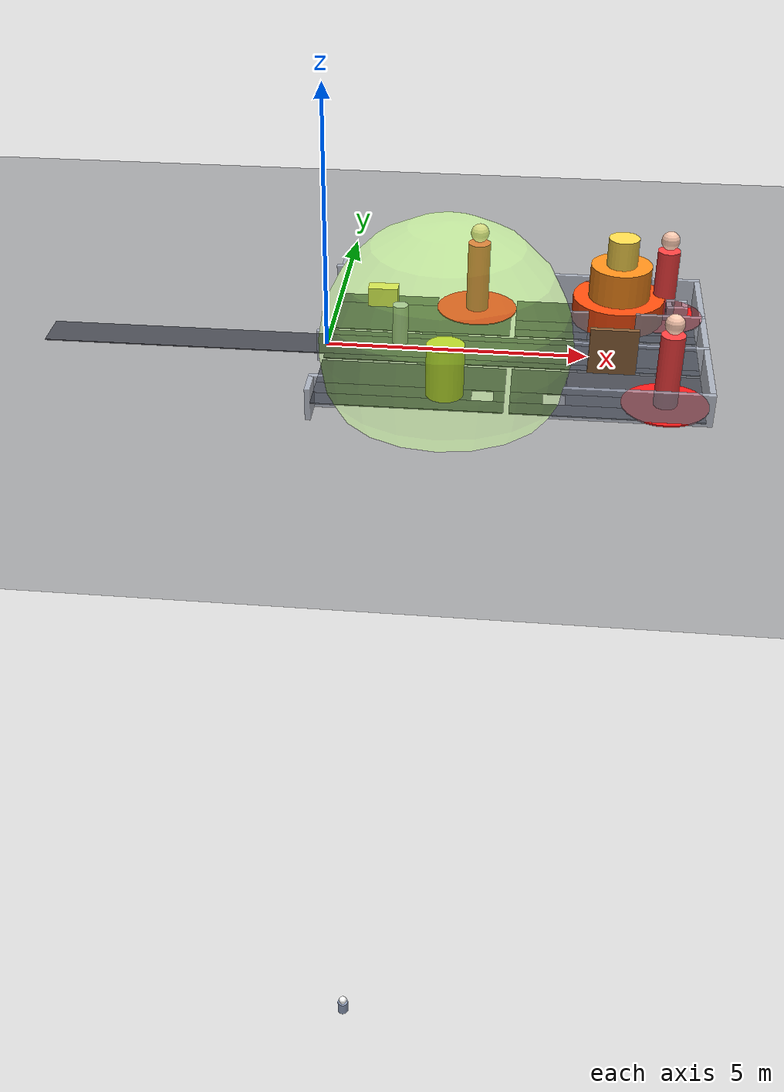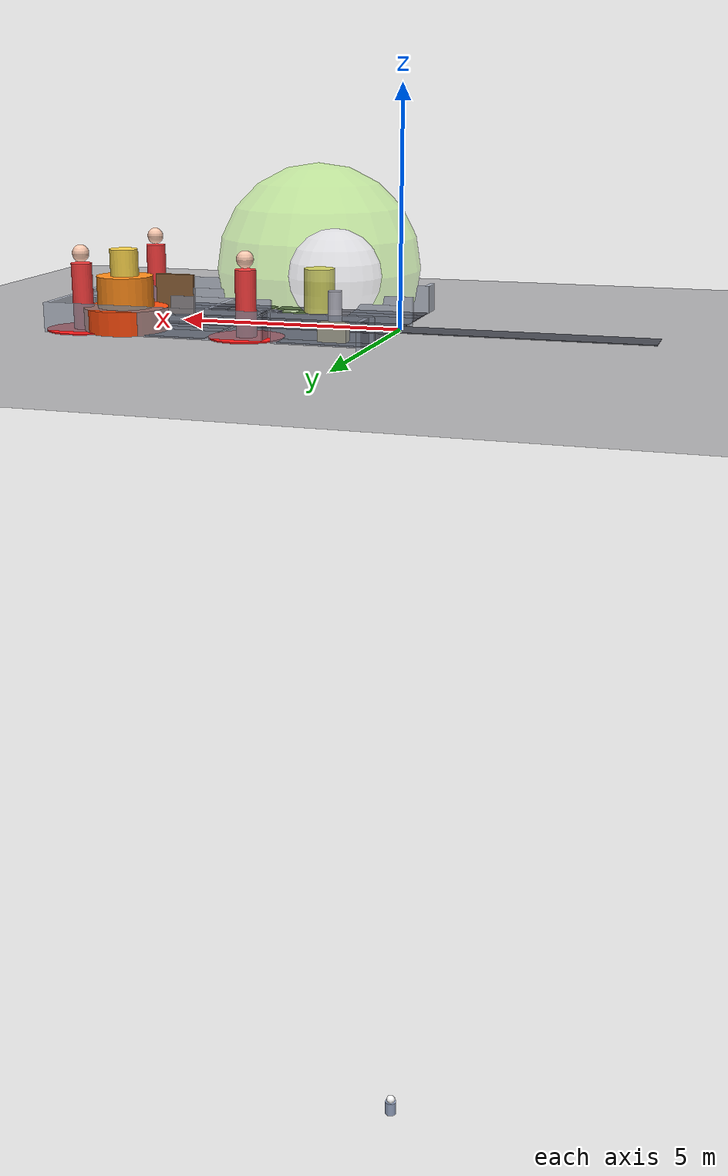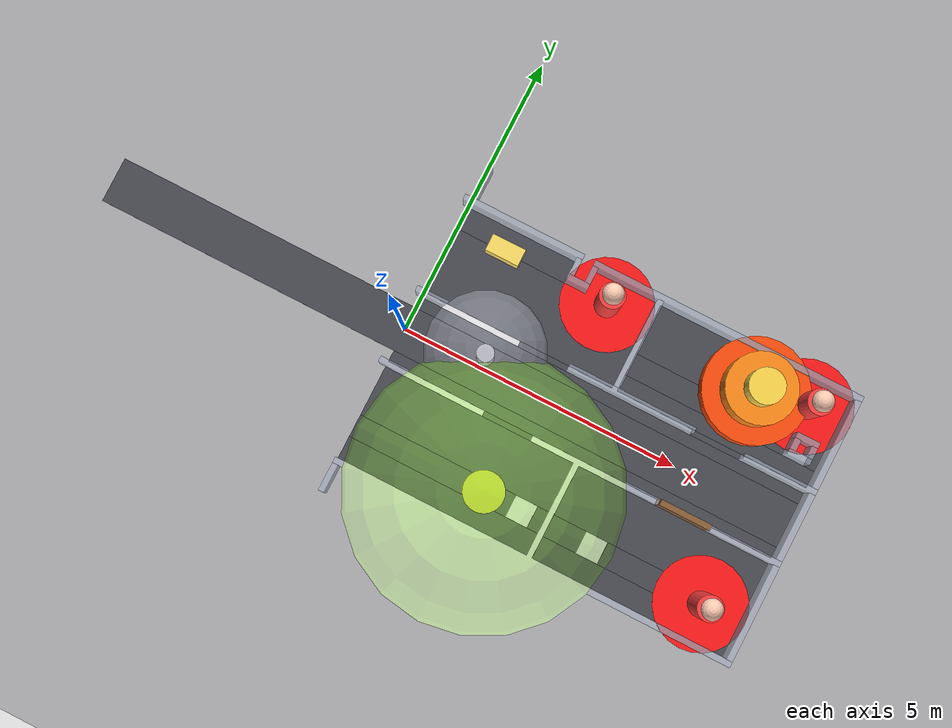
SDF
<sdf version="1.9">
 <world name="living_map_fire">
  <model name="ground">
   <static>true</static>
   <link name="l">
    <collision name="c"><geometry><plane><normal>0 0 1</normal><size>120 80</size></plane></geometry></collision>
    <visual name="v">
     <geometry><plane><normal>0 0 1</normal><size>120 80</size></plane></geometry>
     <material><ambient>0.16 0.17 0.2 1.0</ambient><diffuse>0.16 0.17 0.2 1.0</diffuse></material>
    </visual>
   </link>
  </model>
  <model name="slab0_2">
   <static>true</static>
   <pose>1.750 -2.200 0.010 0 0 0</pose>
   <link name="l">
    <collision name="c"><geometry><box><size>3.500 0.400 0.020</size></box></geometry></collision>
    <visual name="v">
     <geometry><box><size>3.500 0.400 0.020</size></box></geometry>
     <material><ambient>0.28 0.29 0.32 1.0</ambient><diffuse>0.28 0.29 0.32 1.0</diffuse></material>
    </visual>
   </link>
  </model>
  <model name="slab0_3">
   <static>true</static>
   <pose>5.350 -2.200 0.010 0 0 0</pose>
   <link name="l">
    <collision name="c"><geometry><box><size>3.500 0.400 0.020</size></box></geometry></collision>
    <visual name="v">
     <geometry><box><size>3.500 0.400 0.020</size></box></geometry>
     <material><ambient>0.28 0.29 0.32 1.0</ambient><diffuse>0.28 0.29 0.32 1.0</diffuse></material>
    </visual>
   </link>
  </model>
  <model name="slab0_4">
   <static>true</static>
   <pose>1.450 -1.800 0.010 0 0 0</pose>
   <link name="l">
    <collision name="c"><geometry><box><size>2.900 0.400 0.020</size></box></geometry></collision>
    <visual name="v">
     <geometry><box><size>2.900 0.400 0.020</size></box></geometry>
     <material><ambient>0.28 0.29 0.32 1.0</ambient><diffuse>0.28 0.29 0.32 1.0</diffuse></material>
    </visual>
   </link>
  </model>
  <model name="slab0_5">
   <static>true</static>
   <pose>3.400 -1.800 0.010 0 0 0</pose>
   <link name="l">
    <collision name="c"><geometry><box><size>0.200 0.400 0.020</size></box></geometry></collision>
    <visual name="v">
     <geometry><box><size>0.200 0.400 0.020</size></box></geometry>
     <material><ambient>0.28 0.29 0.32 1.0</ambient><diffuse>0.28 0.29 0.32 1.0</diffuse></material>
    </visual>
   </link>
  </model>
  <model name="slab0_6">
   <static>true</static>
   <pose>3.900 -1.800 0.010 0 0 0</pose>
   <link name="l">
    <collision name="c"><geometry><box><size>0.600 0.400 0.020</size></box></geometry></collision>
    <visual name="v">
     <geometry><box><size>0.600 0.400 0.020</size></box></geometry>
     <material><ambient>0.28 0.29 0.32 1.0</ambient><diffuse>0.28 0.29 0.32 1.0</diffuse></material>
    </visual>
   </link>
  </model>
  <model name="slab0_7">
   <static>true</static>
   <pose>5.850 -1.800 0.010 0 0 0</pose>
   <link name="l">
    <collision name="c"><geometry><box><size>2.500 0.400 0.020</size></box></geometry></collision>
    <visual name="v">
     <geometry><box><size>2.500 0.400 0.020</size></box></geometry>
     <material><ambient>0.28 0.29 0.32 1.0</ambient><diffuse>0.28 0.29 0.32 1.0</diffuse></material>
    </visual>
   </link>
  </model>
  <model name="slab0_8">
   <static>true</static>
   <pose>1.750 -1.150 0.010 0 0 0</pose>
   <link name="l">
    <collision name="c"><geometry><box><size>3.500 0.900 0.020</size></box></geometry></collision>
    <visual name="v">
     <geometry><box><size>3.500 0.900 0.020</size></box></geometry>
     <material><ambient>0.28 0.29 0.32 1.0</ambient><diffuse>0.28 0.29 0.32 1.0</diffuse></material>
    </visual>
   </link>
  </model>
  <model name="slab0_9">
   <static>true</static>
   <pose>5.350 -1.150 0.010 0 0 0</pose>
   <link name="l">
    <collision name="c"><geometry><box><size>3.500 0.900 0.020</size></box></geometry></collision>
    <visual name="v">
     <geometry><box><size>3.500 0.900 0.020</size></box></geometry>
     <material><ambient>0.28 0.29 0.32 1.0</ambient><diffuse>0.28 0.29 0.32 1.0</diffuse></material>
    </visual>
   </link>
  </model>
  <model name="slab0_10">
   <static>true</static>
   <pose>2.250 -0.650 0.010 0 0 0</pose>
   <link name="l">
    <collision name="c"><geometry><box><size>0.900 0.100 0.020</size></box></geometry></collision>
    <visual name="v">
     <geometry><box><size>0.900 0.100 0.020</size></box></geometry>
     <material><ambient>0.28 0.29 0.32 1.0</ambient><diffuse>0.28 0.29 0.32 1.0</diffuse></material>
    </visual>
   </link>
  </model>
  <model name="slab0_11">
   <static>true</static>
   <pose>5.450 -0.650 0.010 0 0 0</pose>
   <link name="l">
    <collision name="c"><geometry><box><size>0.900 0.100 0.020</size></box></geometry></collision>
    <visual name="v">
     <geometry><box><size>0.900 0.100 0.020</size></box></geometry>
     <material><ambient>0.28 0.29 0.32 1.0</ambient><diffuse>0.28 0.29 0.32 1.0</diffuse></material>
    </visual>
   </link>
  </model>
  <model name="slab0_12">
   <static>true</static>
   <pose>3.550 -0.500 0.010 0 0 0</pose>
   <link name="l">
    <collision name="c"><geometry><box><size>7.100 0.200 0.020</size></box></geometry></collision>
    <visual name="v">
     <geometry><box><size>7.100 0.200 0.020</size></box></geometry>
     <material><ambient>0.28 0.29 0.32 1.0</ambient><diffuse>0.28 0.29 0.32 1.0</diffuse></material>
    </visual>
   </link>
  </model>
  <model name="slab0_13">
   <static>true</static>
   <pose>0.800 0.000 0.010 0 0 0</pose>
   <link name="l">
    <collision name="c"><geometry><box><size>12.600 0.800 0.020</size></box></geometry></collision>
    <visual name="v">
     <geometry><box><size>12.600 0.800 0.020</size></box></geometry>
     <material><ambient>0.28 0.29 0.32 1.0</ambient><diffuse>0.28 0.29 0.32 1.0</diffuse></material>
    </visual>
   </link>
  </model>
  <model name="slab0_15">
   <static>true</static>
   <pose>3.550 0.500 0.010 0 0 0</pose>
   <link name="l">
    <collision name="c"><geometry><box><size>7.100 0.200 0.020</size></box></geometry></collision>
    <visual name="v">
     <geometry><box><size>7.100 0.200 0.020</size></box></geometry>
     <material><ambient>0.28 0.29 0.32 1.0</ambient><diffuse>0.28 0.29 0.32 1.0</diffuse></material>
    </visual>
   </link>
  </model>
  <model name="slab0_16">
   <static>true</static>
   <pose>2.250 0.650 0.010 0 0 0</pose>
   <link name="l">
    <collision name="c"><geometry><box><size>0.900 0.100 0.020</size></box></geometry></collision>
    <visual name="v">
     <geometry><box><size>0.900 0.100 0.020</size></box></geometry>
     <material><ambient>0.28 0.29 0.32 1.0</ambient><diffuse>0.28 0.29 0.32 1.0</diffuse></material>
    </visual>
   </link>
  </model>
  <model name="slab0_17">
   <static>true</static>
   <pose>5.450 0.650 0.010 0 0 0</pose>
   <link name="l">
    <collision name="c"><geometry><box><size>0.900 0.100 0.020</size></box></geometry></collision>
    <visual name="v">
     <geometry><box><size>0.900 0.100 0.020</size></box></geometry>
     <material><ambient>0.28 0.29 0.32 1.0</ambient><diffuse>0.28 0.29 0.32 1.0</diffuse></material>
    </visual>
   </link>
  </model>
  <model name="slab0_18">
   <static>true</static>
   <pose>1.750 1.300 0.010 0 0 0</pose>
   <link name="l">
    <collision name="c"><geometry><box><size>3.500 1.200 0.020</size></box></geometry></collision>
    <visual name="v">
     <geometry><box><size>3.500 1.200 0.020</size></box></geometry>
     <material><ambient>0.28 0.29 0.32 1.0</ambient><diffuse>0.28 0.29 0.32 1.0</diffuse></material>
    </visual>
   </link>
  </model>
  <model name="slab0_19">
   <static>true</static>
   <pose>5.350 0.850 0.010 0 0 0</pose>
   <link name="l">
    <collision name="c"><geometry><box><size>3.500 0.300 0.020</size></box></geometry></collision>
    <visual name="v">
     <geometry><box><size>3.500 0.300 0.020</size></box></geometry>
     <material><ambient>0.28 0.29 0.32 1.0</ambient><diffuse>0.28 0.29 0.32 1.0</diffuse></material>
    </visual>
   </link>
  </model>
  <model name="slab0_20">
   <static>true</static>
   <pose>5.050 1.200 0.010 0 0 0</pose>
   <link name="l">
    <collision name="c"><geometry><box><size>2.900 0.400 0.020</size></box></geometry></collision>
    <visual name="v">
     <geometry><box><size>2.900 0.400 0.020</size></box></geometry>
     <material><ambient>0.28 0.29 0.32 1.0</ambient><diffuse>0.28 0.29 0.32 1.0</diffuse></material>
    </visual>
   </link>
  </model>
  <model name="slab0_21">
   <static>true</static>
   <pose>7.000 1.200 0.010 0 0 0</pose>
   <link name="l">
    <collision name="c"><geometry><box><size>0.200 0.400 0.020</size></box></geometry></collision>
    <visual name="v">
     <geometry><box><size>0.200 0.400 0.020</size></box></geometry>
     <material><ambient>0.28 0.29 0.32 1.0</ambient><diffuse>0.28 0.29 0.32 1.0</diffuse></material>
    </visual>
   </link>
  </model>
  <model name="slab0_22">
   <static>true</static>
   <pose>5.350 1.850 0.010 0 0 0</pose>
   <link name="l">
    <collision name="c"><geometry><box><size>3.500 0.900 0.020</size></box></geometry></collision>
    <visual name="v">
     <geometry><box><size>3.500 0.900 0.020</size></box></geometry>
     <material><ambient>0.28 0.29 0.32 1.0</ambient><diffuse>0.28 0.29 0.32 1.0</diffuse></material>
    </visual>
   </link>
  </model>
  <model name="slab0_23">
   <static>true</static>
   <pose>1.000 2.100 0.010 0 0 0</pose>
   <link name="l">
    <collision name="c"><geometry><box><size>2.000 0.400 0.020</size></box></geometry></collision>
    <visual name="v">
     <geometry><box><size>2.000 0.400 0.020</size></box></geometry>
     <material><ambient>0.28 0.29 0.32 1.0</ambient><diffuse>0.28 0.29 0.32 1.0</diffuse></material>
    </visual>
   </link>
  </model>
  <model name="slab0_24">
   <static>true</static>
   <pose>2.950 2.100 0.010 0 0 0</pose>
   <link name="l">
    <collision name="c"><geometry><box><size>1.100 0.400 0.020</size></box></geometry></collision>
    <visual name="v">
     <geometry><box><size>1.100 0.400 0.020</size></box></geometry>
     <material><ambient>0.28 0.29 0.32 1.0</ambient><diffuse>0.28 0.29 0.32 1.0</diffuse></material>
    </visual>
   </link>
  </model>
  <model name="wall0_2">
   <static>true</static>
   <pose>0.050 -2.750 0.305 0 0 0</pose>
   <link name="l">
    <collision name="c"><geometry><box><size>0.100 0.500 0.610</size></box></geometry></collision>
    <visual name="v">
     <geometry><box><size>0.100 0.500 0.610</size></box></geometry>
     <material><ambient>0.62 0.65 0.72 0.75</ambient><diffuse>0.62 0.65 0.72 0.75</diffuse></material>
    </visual>
   </link>
  </model>
  <model name="wall0_3">
   <static>true</static>
   <pose>3.600 -2.450 0.305 0 0 0</pose>
   <link name="l">
    <collision name="c"><geometry><box><size>7.200 0.100 0.610</size></box></geometry></collision>
    <visual name="v">
     <geometry><box><size>7.200 0.100 0.610</size></box></geometry>
     <material><ambient>0.62 0.65 0.72 0.75</ambient><diffuse>0.62 0.65 0.72 0.75</diffuse></material>
    </visual>
   </link>
  </model>
  <model name="wall0_5">
   <static>true</static>
   <pose>3.550 -1.550 0.305 0 0 0</pose>
   <link name="l">
    <collision name="c"><geometry><box><size>0.100 1.700 0.610</size></box></geometry></collision>
    <visual name="v">
     <geometry><box><size>0.100 1.700 0.610</size></box></geometry>
     <material><ambient>0.62 0.65 0.72 0.75</ambient><diffuse>0.62 0.65 0.72 0.75</diffuse></material>
    </visual>
   </link>
  </model>
  <model name="wall0_6">
   <static>true</static>
   <pose>7.150 -1.550 0.305 0 0 0</pose>
   <link name="l">
    <collision name="c"><geometry><box><size>0.100 1.700 0.610</size></box></geometry></collision>
    <visual name="v">
     <geometry><box><size>0.100 1.700 0.610</size></box></geometry>
     <material><ambient>0.62 0.65 0.72 0.75</ambient><diffuse>0.62 0.65 0.72 0.75</diffuse></material>
    </visual>
   </link>
  </model>
  <model name="wall0_7">
   <static>true</static>
   <pose>3.100 -1.950 0.305 0 0 0</pose>
   <link name="l">
    <collision name="c"><geometry><box><size>0.400 0.100 0.610</size></box></geometry></collision>
    <visual name="v">
     <geometry><box><size>0.400 0.100 0.610</size></box></geometry>
     <material><ambient>0.62 0.65 0.72 0.75</ambient><diffuse>0.62 0.65 0.72 0.75</diffuse></material>
    </visual>
   </link>
  </model>
  <model name="wall0_8">
   <static>true</static>
   <pose>4.400 -1.950 0.305 0 0 0</pose>
   <link name="l">
    <collision name="c"><geometry><box><size>0.400 0.100 0.610</size></box></geometry></collision>
    <visual name="v">
     <geometry><box><size>0.400 0.100 0.610</size></box></geometry>
     <material><ambient>0.62 0.65 0.72 0.75</ambient><diffuse>0.62 0.65 0.72 0.75</diffuse></material>
    </visual>
   </link>
  </model>
  <model name="wall0_9">
   <static>true</static>
   <pose>2.950 -1.800 0.305 0 0 0</pose>
   <link name="l">
    <collision name="c"><geometry><box><size>0.100 0.200 0.610</size></box></geometry></collision>
    <visual name="v">
     <geometry><box><size>0.100 0.200 0.610</size></box></geometry>
     <material><ambient>0.62 0.65 0.72 0.75</ambient><diffuse>0.62 0.65 0.72 0.75</diffuse></material>
    </visual>
   </link>
  </model>
  <model name="wall0_10">
   <static>true</static>
   <pose>3.250 -1.800 0.305 0 0 0</pose>
   <link name="l">
    <collision name="c"><geometry><box><size>0.100 0.200 0.610</size></box></geometry></collision>
    <visual name="v">
     <geometry><box><size>0.100 0.200 0.610</size></box></geometry>
     <material><ambient>0.62 0.65 0.72 0.75</ambient><diffuse>0.62 0.65 0.72 0.75</diffuse></material>
    </visual>
   </link>
  </model>
  <model name="wall0_11">
   <static>true</static>
   <pose>4.250 -1.800 0.305 0 0 0</pose>
   <link name="l">
    <collision name="c"><geometry><box><size>0.100 0.200 0.610</size></box></geometry></collision>
    <visual name="v">
     <geometry><box><size>0.100 0.200 0.610</size></box></geometry>
     <material><ambient>0.62 0.65 0.72 0.75</ambient><diffuse>0.62 0.65 0.72 0.75</diffuse></material>
    </visual>
   </link>
  </model>
  <model name="wall0_12">
   <static>true</static>
   <pose>4.550 -1.800 0.305 0 0 0</pose>
   <link name="l">
    <collision name="c"><geometry><box><size>0.100 0.200 0.610</size></box></geometry></collision>
    <visual name="v">
     <geometry><box><size>0.100 0.200 0.610</size></box></geometry>
     <material><ambient>0.62 0.65 0.72 0.75</ambient><diffuse>0.62 0.65 0.72 0.75</diffuse></material>
    </visual>
   </link>
  </model>
  <model name="wall0_13">
   <static>true</static>
   <pose>3.100 -1.650 0.305 0 0 0</pose>
   <link name="l">
    <collision name="c"><geometry><box><size>0.400 0.100 0.610</size></box></geometry></collision>
    <visual name="v">
     <geometry><box><size>0.400 0.100 0.610</size></box></geometry>
     <material><ambient>0.62 0.65 0.72 0.75</ambient><diffuse>0.62 0.65 0.72 0.75</diffuse></material>
    </visual>
   </link>
  </model>
  <model name="wall0_14">
   <static>true</static>
   <pose>4.400 -1.650 0.305 0 0 0</pose>
   <link name="l">
    <collision name="c"><geometry><box><size>0.400 0.100 0.610</size></box></geometry></collision>
    <visual name="v">
     <geometry><box><size>0.400 0.100 0.610</size></box></geometry>
     <material><ambient>0.62 0.65 0.72 0.75</ambient><diffuse>0.62 0.65 0.72 0.75</diffuse></material>
    </visual>
   </link>
  </model>
  <model name="wall0_15">
   <static>true</static>
   <pose>0.850 -0.650 0.305 0 0 0</pose>
   <link name="l">
    <collision name="c"><geometry><box><size>1.900 0.100 0.610</size></box></geometry></collision>
    <visual name="v">
     <geometry><box><size>1.900 0.100 0.610</size></box></geometry>
     <material><ambient>0.62 0.65 0.72 0.75</ambient><diffuse>0.62 0.65 0.72 0.75</diffuse></material>
    </visual>
   </link>
  </model>
  <model name="wall0_16">
   <static>true</static>
   <pose>3.850 -0.650 0.305 0 0 0</pose>
   <link name="l">
    <collision name="c"><geometry><box><size>2.300 0.100 0.610</size></box></geometry></collision>
    <visual name="v">
     <geometry><box><size>2.300 0.100 0.610</size></box></geometry>
     <material><ambient>0.62 0.65 0.72 0.75</ambient><diffuse>0.62 0.65 0.72 0.75</diffuse></material>
    </visual>
   </link>
  </model>
  <model name="wall0_17">
   <static>true</static>
   <pose>6.550 -0.650 0.305 0 0 0</pose>
   <link name="l">
    <collision name="c"><geometry><box><size>1.300 0.100 0.610</size></box></geometry></collision>
    <visual name="v">
     <geometry><box><size>1.300 0.100 0.610</size></box></geometry>
     <material><ambient>0.62 0.65 0.72 0.75</ambient><diffuse>0.62 0.65 0.72 0.75</diffuse></material>
    </visual>
   </link>
  </model>
  <model name="wall0_19">
   <static>true</static>
   <pose>7.150 0.000 0.305 0 0 0</pose>
   <link name="l">
    <collision name="c"><geometry><box><size>0.100 1.200 0.610</size></box></geometry></collision>
    <visual name="v">
     <geometry><box><size>0.100 1.200 0.610</size></box></geometry>
     <material><ambient>0.62 0.65 0.72 0.75</ambient><diffuse>0.62 0.65 0.72 0.75</diffuse></material>
    </visual>
   </link>
  </model>
  <model name="wall0_21">
   <static>true</static>
   <pose>0.850 0.650 0.305 0 0 0</pose>
   <link name="l">
    <collision name="c"><geometry><box><size>1.900 0.100 0.610</size></box></geometry></collision>
    <visual name="v">
     <geometry><box><size>1.900 0.100 0.610</size></box></geometry>
     <material><ambient>0.62 0.65 0.72 0.75</ambient><diffuse>0.62 0.65 0.72 0.75</diffuse></material>
    </visual>
   </link>
  </model>
  <model name="wall0_22">
   <static>true</static>
   <pose>3.850 0.650 0.305 0 0 0</pose>
   <link name="l">
    <collision name="c"><geometry><box><size>2.300 0.100 0.610</size></box></geometry></collision>
    <visual name="v">
     <geometry><box><size>2.300 0.100 0.610</size></box></geometry>
     <material><ambient>0.62 0.65 0.72 0.75</ambient><diffuse>0.62 0.65 0.72 0.75</diffuse></material>
    </visual>
   </link>
  </model>
  <model name="wall0_23">
   <static>true</static>
   <pose>6.550 0.650 0.305 0 0 0</pose>
   <link name="l">
    <collision name="c"><geometry><box><size>1.300 0.100 0.610</size></box></geometry></collision>
    <visual name="v">
     <geometry><box><size>1.300 0.100 0.610</size></box></geometry>
     <material><ambient>0.62 0.65 0.72 0.75</ambient><diffuse>0.62 0.65 0.72 0.75</diffuse></material>
    </visual>
   </link>
  </model>
  <model name="wall0_25">
   <static>true</static>
   <pose>3.550 1.500 0.305 0 0 0</pose>
   <link name="l">
    <collision name="c"><geometry><box><size>0.100 1.600 0.610</size></box></geometry></collision>
    <visual name="v">
     <geometry><box><size>0.100 1.600 0.610</size></box></geometry>
     <material><ambient>0.62 0.65 0.72 0.75</ambient><diffuse>0.62 0.65 0.72 0.75</diffuse></material>
    </visual>
   </link>
  </model>
  <model name="wall0_26">
   <static>true</static>
   <pose>7.150 1.500 0.305 0 0 0</pose>
   <link name="l">
    <collision name="c"><geometry><box><size>0.100 1.600 0.610</size></box></geometry></collision>
    <visual name="v">
     <geometry><box><size>0.100 1.600 0.610</size></box></geometry>
     <material><ambient>0.62 0.65 0.72 0.75</ambient><diffuse>0.62 0.65 0.72 0.75</diffuse></material>
    </visual>
   </link>
  </model>
  <model name="wall0_27">
   <static>true</static>
   <pose>6.700 1.050 0.305 0 0 0</pose>
   <link name="l">
    <collision name="c"><geometry><box><size>0.400 0.100 0.610</size></box></geometry></collision>
    <visual name="v">
     <geometry><box><size>0.400 0.100 0.610</size></box></geometry>
     <material><ambient>0.62 0.65 0.72 0.75</ambient><diffuse>0.62 0.65 0.72 0.75</diffuse></material>
    </visual>
   </link>
  </model>
  <model name="wall0_28">
   <static>true</static>
   <pose>6.550 1.200 0.305 0 0 0</pose>
   <link name="l">
    <collision name="c"><geometry><box><size>0.100 0.200 0.610</size></box></geometry></collision>
    <visual name="v">
     <geometry><box><size>0.100 0.200 0.610</size></box></geometry>
     <material><ambient>0.62 0.65 0.72 0.75</ambient><diffuse>0.62 0.65 0.72 0.75</diffuse></material>
    </visual>
   </link>
  </model>
  <model name="wall0_29">
   <static>true</static>
   <pose>6.850 1.200 0.305 0 0 0</pose>
   <link name="l">
    <collision name="c"><geometry><box><size>0.100 0.200 0.610</size></box></geometry></collision>
    <visual name="v">
     <geometry><box><size>0.100 0.200 0.610</size></box></geometry>
     <material><ambient>0.62 0.65 0.72 0.75</ambient><diffuse>0.62 0.65 0.72 0.75</diffuse></material>
    </visual>
   </link>
  </model>
  <model name="wall0_30">
   <static>true</static>
   <pose>6.700 1.350 0.305 0 0 0</pose>
   <link name="l">
    <collision name="c"><geometry><box><size>0.400 0.100 0.610</size></box></geometry></collision>
    <visual name="v">
     <geometry><box><size>0.400 0.100 0.610</size></box></geometry>
     <material><ambient>0.62 0.65 0.72 0.75</ambient><diffuse>0.62 0.65 0.72 0.75</diffuse></material>
    </visual>
   </link>
  </model>
  <model name="wall0_31">
   <static>true</static>
   <pose>2.200 1.950 0.305 0 0 0</pose>
   <link name="l">
    <collision name="c"><geometry><box><size>0.400 0.100 0.610</size></box></geometry></collision>
    <visual name="v">
     <geometry><box><size>0.400 0.100 0.610</size></box></geometry>
     <material><ambient>0.62 0.65 0.72 0.75</ambient><diffuse>0.62 0.65 0.72 0.75</diffuse></material>
    </visual>
   </link>
  </model>
  <model name="wall0_32">
   <static>true</static>
   <pose>2.050 2.150 0.305 0 0 0</pose>
   <link name="l">
    <collision name="c"><geometry><box><size>0.100 0.300 0.610</size></box></geometry></collision>
    <visual name="v">
     <geometry><box><size>0.100 0.300 0.610</size></box></geometry>
     <material><ambient>0.62 0.65 0.72 0.75</ambient><diffuse>0.62 0.65 0.72 0.75</diffuse></material>
    </visual>
   </link>
  </model>
  <model name="wall0_33">
   <static>true</static>
   <pose>2.350 2.150 0.305 0 0 0</pose>
   <link name="l">
    <collision name="c"><geometry><box><size>0.100 0.300 0.610</size></box></geometry></collision>
    <visual name="v">
     <geometry><box><size>0.100 0.300 0.610</size></box></geometry>
     <material><ambient>0.62 0.65 0.72 0.75</ambient><diffuse>0.62 0.65 0.72 0.75</diffuse></material>
    </visual>
   </link>
  </model>
  <model name="wall0_34">
   <static>true</static>
   <pose>1.000 2.350 0.305 0 0 0</pose>
   <link name="l">
    <collision name="c"><geometry><box><size>2.200 0.100 0.610</size></box></geometry></collision>
    <visual name="v">
     <geometry><box><size>2.200 0.100 0.610</size></box></geometry>
     <material><ambient>0.62 0.65 0.72 0.75</ambient><diffuse>0.62 0.65 0.72 0.75</diffuse></material>
    </visual>
   </link>
  </model>
  <model name="wall0_35">
   <static>true</static>
   <pose>4.750 2.350 0.305 0 0 0</pose>
   <link name="l">
    <collision name="c"><geometry><box><size>4.900 0.100 0.610</size></box></geometry></collision>
    <visual name="v">
     <geometry><box><size>4.900 0.100 0.610</size></box></geometry>
     <material><ambient>0.62 0.65 0.72 0.75</ambient><diffuse>0.62 0.65 0.72 0.75</diffuse></material>
    </visual>
   </link>
  </model>
  <model name="wall0_36">
   <static>true</static>
   <pose>0.050 2.700 0.305 0 0 0</pose>
   <link name="l">
    <collision name="c"><geometry><box><size>0.100 0.600 0.610</size></box></geometry></collision>
    <visual name="v">
     <geometry><box><size>0.100 0.600 0.610</size></box></geometry>
     <material><ambient>0.62 0.65 0.72 0.75</ambient><diffuse>0.62 0.65 0.72 0.75</diffuse></material>
    </visual>
   </link>
  </model>
  <model name="rubble0_0">
   <static>true</static>
   <pose>5.450 -0.650 0.450 0 0 0</pose>
   <link name="l">
    <collision name="c"><geometry><box><size>0.900 0.100 0.900</size></box></geometry></collision>
    <visual name="v">
     <geometry><box><size>0.900 0.100 0.900</size></box></geometry>
     <material><ambient>0.55 0.38 0.22 1.0</ambient><diffuse>0.55 0.38 0.22 1.0</diffuse></material>
    </visual>
   </link>
  </model>
  <model name="fire_0">
   <static>false</static>
   <pose>5.6 1.7 0.0 0 0 0</pose>
   <link name="l">
    <gravity>false</gravity>
    <inertial><mass>1</mass><inertia><ixx>0.1</ixx><iyy>0.1</iyy><izz>0.1</izz></inertia></inertial>
    <visual name="a">
     <pose>0 0 0.25 0 0 0</pose>
     <geometry><cylinder><radius>0.9</radius><length>0.5</length></cylinder></geometry>
     <material>
      <ambient>1 0.3 0.05 1.0</ambient>
      <diffuse>1 0.3 0.05 1.0</diffuse>
      <emissive>1 0.35 0.05 1</emissive>
     </material>
    </visual>
    <visual name="b">
     <pose>0 0 0.7 0 0 0</pose>
     <geometry><cylinder><radius>0.6</radius><length>0.9</length></cylinder></geometry>
     <material>
      <ambient>1 0.55 0.1 1.0</ambient>
      <diffuse>1 0.55 0.1 1.0</diffuse>
      <emissive>1 0.6 0.1 1</emissive>
     </material>
    </visual>
    <visual name="c">
     <pose>0 0 1.2 0 0 0</pose>
     <geometry><cylinder><radius>0.3</radius><length>1.0</length></cylinder></geometry>
     <material>
      <ambient>1 0.85 0.3 1.0</ambient>
      <diffuse>1 0.85 0.3 1.0</diffuse>
      <emissive>1 0.9 0.4 1</emissive>
     </material>
    </visual>
    <light type="point" name="fl0">
     <pose>0 0 1.2 0 0 0</pose>
     <diffuse>1 0.45 0.1 1</diffuse>
     <specular>1 0.4 0.1 1</specular>
     <attenuation>
      <range>9</range>
      <constant>0.3</constant>
      <linear>0.15</linear>
      <quadratic>0.03</quadratic>
     </attenuation>
     <cast_shadows>false</cast_shadows>
    </light>
   </link>
  </model>
  <model name="gas_tank_0">
   <static>true</static>
   <pose>2.400 -1.800 0.500 0 0 0</pose>
   <link name="l">
    <visual name="v">
     <geometry><cylinder><radius>0.35</radius><length>1.0</length></cylinder></geometry>
     <material><ambient>0.85 0.85 0.2 1.0</ambient><diffuse>0.85 0.85 0.2 1.0</diffuse></material>
    </visual>
   </link>
  </model>
  <model name="gas_cloud_0">
   <static>true</static>
   <pose>2.400 -1.800 1.000 0 0 0</pose>
   <link name="l">
    <visual name="v">
     <geometry><sphere><radius>2.3</radius></sphere></geometry>
     <material>
      <ambient>0.6 1 0.2 0.35</ambient>
      <diffuse>0.6 1 0.2 0.35</diffuse>
      <emissive>0.2 0.4 0.05 1</emissive>
     </material>
     <transparency>0.65</transparency>
    </visual>
   </link>
  </model>
  <model name="steam_pipe_0">
   <static>true</static>
   <pose>1.400 0.200 0.400 0 0 0</pose>
   <link name="l">
    <visual name="v">
     <geometry><cylinder><radius>0.15</radius><length>0.8</length></cylinder></geometry>
     <material><ambient>0.7 0.7 0.75 1.0</ambient><diffuse>0.7 0.7 0.75 1.0</diffuse></material>
    </visual>
   </link>
  </model>
  <model name="steam_cloud_0">
   <static>true</static>
   <pose>1.400 0.200 1.100 0 0 0</pose>
   <link name="l">
    <visual name="v">
     <geometry><sphere><radius>1.0</radius></sphere></geometry>
     <material><ambient>0.95 0.95 1 0.4</ambient><diffuse>0.95 0.95 1 0.4</diffuse></material>
     <transparency>0.7</transparency>
    </visual>
   </link>
  </model>
  <model name="person_0">
   <static>false</static>
   <pose>2.8 1.9 0.0 0 0 0</pose>
   <link name="l">
    <gravity>false</gravity>
    <inertial><mass>1</mass><inertia><ixx>0.1</ixx><iyy>0.1</iyy><izz>0.1</izz></inertia></inertial>
    <visual name="body">
     <pose>0 0 0.7 0 0 0</pose>
     <geometry><cylinder><radius>0.22</radius><length>1.4</length></cylinder></geometry>
     <material><ambient>1 0.25 0.25 1.0</ambient><diffuse>1 0.25 0.25 1.0</diffuse></material>
    </visual>
    <visual name="head">
     <pose>0 0 1.6 0 0 0</pose>
     <geometry><sphere><radius>0.18</radius></sphere></geometry>
     <material><ambient>1 0.8 0.7 1.0</ambient><diffuse>1 0.8 0.7 1.0</diffuse></material>
    </visual>
    <visual name="ring">
     <pose>0 0 0.02 0 0 0</pose>
     <geometry><cylinder><radius>0.8</radius><length>0.03</length></cylinder></geometry>
     <material>
      <ambient>1 0.1 0.1 1.0</ambient>
      <diffuse>1 0.1 0.1 1.0</diffuse>
      <emissive>0.6 0 0 1</emissive>
     </material>
    </visual>
   </link>
  </model>
  <model name="person_1">
   <static>false</static>
   <pose>6.5 1.9 0.0 0 0 0</pose>
   <link name="l">
    <gravity>false</gravity>
    <inertial><mass>1</mass><inertia><ixx>0.1</ixx><iyy>0.1</iyy><izz>0.1</izz></inertia></inertial>
    <visual name="body">
     <pose>0 0 0.7 0 0 0</pose>
     <geometry><cylinder><radius>0.22</radius><length>1.4</length></cylinder></geometry>
     <material><ambient>1 0.25 0.25 1.0</ambient><diffuse>1 0.25 0.25 1.0</diffuse></material>
    </visual>
    <visual name="head">
     <pose>0 0 1.6 0 0 0</pose>
     <geometry><sphere><radius>0.18</radius></sphere></geometry>
     <material><ambient>1 0.8 0.7 1.0</ambient><diffuse>1 0.8 0.7 1.0</diffuse></material>
    </visual>
    <visual name="ring">
     <pose>0 0 0.02 0 0 0</pose>
     <geometry><cylinder><radius>0.8</radius><length>0.03</length></cylinder></geometry>
     <material>
      <ambient>1 0.1 0.1 1.0</ambient>
      <diffuse>1 0.1 0.1 1.0</diffuse>
      <emissive>0.6 0 0 1</emissive>
     </material>
    </visual>
   </link>
  </model>
  <model name="person_2">
   <static>false</static>
   <pose>6.4 -1.8 0.0 0 0 0</pose>
   <link name="l">
    <gravity>false</gravity>
    <inertial><mass>1</mass><inertia><ixx>0.1</ixx><iyy>0.1</iyy><izz>0.1</izz></inertia></inertial>
    <visual name="body">
     <pose>0 0 0.7 0 0 0</pose>
     <geometry><cylinder><radius>0.22</radius><length>1.4</length></cylinder></geometry>
     <material><ambient>1 0.25 0.25 1.0</ambient><diffuse>1 0.25 0.25 1.0</diffuse></material>
    </visual>
    <visual name="head">
     <pose>0 0 1.6 0 0 0</pose>
     <geometry><sphere><radius>0.18</radius></sphere></geometry>
     <material><ambient>1 0.8 0.7 1.0</ambient><diffuse>1 0.8 0.7 1.0</diffuse></material>
    </visual>
    <visual name="ring">
     <pose>0 0 0.02 0 0 0</pose>
     <geometry><cylinder><radius>0.8</radius><length>0.03</length></cylinder></geometry>
     <material>
      <ambient>1 0.1 0.1 1.0</ambient>
      <diffuse>1 0.1 0.1 1.0</diffuse>
      <emissive>0.6 0 0 1</emissive>
     </material>
    </visual>
   </link>
  </model>
  <model name="animal_0">
   <static>false</static>
   <pose>0.9 1.9 0.2 0 0 0</pose>
   <link name="l">
    <gravity>false</gravity>
    <inertial><mass>1</mass><inertia><ixx>0.1</ixx><iyy>0.1</iyy><izz>0.1</izz></inertia></inertial>
    <visual name="b">
     <geometry><box><size>0.6 0.3 0.4</size></box></geometry>
     <material><ambient>1 0.88 0.4 1.0</ambient><diffuse>1 0.88 0.4 1.0</diffuse></material>
    </visual>
   </link>
  </model>
  <model name="bcn_p3_11">
   <static>false</static>
   <pose>0 0 -20 0 0 0</pose>
   <link name="l">
    <gravity>false</gravity>
    <inertial><mass>1</mass><inertia><ixx>0.1</ixx><iyy>0.1</iyy><izz>0.1</izz></inertia></inertial>
    <visual name="b">
     <geometry><cylinder><radius>0.14</radius><length>0.36</length></cylinder></geometry>
     <material>
      <ambient>0.6 0.66 0.78 1.0</ambient>
      <diffuse>0.6 0.66 0.78 1.0</diffuse>
      <emissive>0.6 0.66 0.78 1</emissive>
     </material>
    </visual>
    <visual name="t">
     <pose>0 0 0.24 0 0 0</pose>
     <geometry><sphere><radius>0.11</radius></sphere></geometry>
     <material><ambient>1 1 1 1.0</ambient><diffuse>1 1 1 1.0</diffuse><emissive>1 1 1 1</emissive></material>
    </visual>
   </link>
  </model>
  <model name="bcn_p3_12">
   <static>false</static>
   <pose>0 0 -20 0 0 0</pose>
   <link name="l">
    <gravity>false</gravity>
    <inertial><mass>1</mass><inertia><ixx>0.1</ixx><iyy>0.1</iyy><izz>0.1</izz></inertia></inertial>
    <visual name="b">
     <geometry><cylinder><radius>0.14</radius><length>0.36</length></cylinder></geometry>
     <material>
      <ambient>0.6 0.66 0.78 1.0</ambient>
      <diffuse>0.6 0.66 0.78 1.0</diffuse>
      <emissive>0.6 0.66 0.78 1</emissive>
     </material>
    </visual>
    <visual name="t">
     <pose>0 0 0.24 0 0 0</pose>
     <geometry><sphere><radius>0.11</radius></sphere></geometry>
     <material><ambient>1 1 1 1.0</ambient><diffuse>1 1 1 1.0</diffuse><emissive>1 1 1 1</emissive></material>
    </visual>
   </link>
  </model>
  <model name="bcn_p3_13">
   <static>false</static>
   <pose>0 0 -20 0 0 0</pose>
   <link name="l">
    <gravity>false</gravity>
    <inertial><mass>1</mass><inertia><ixx>0.1</ixx><iyy>0.1</iyy><izz>0.1</izz></inertia></inertial>
    <visual name="b">
     <geometry><cylinder><radius>0.14</radius><length>0.36</length></cylinder></geometry>
     <material>
      <ambient>0.6 0.66 0.78 1.0</ambient>
      <diffuse>0.6 0.66 0.78 1.0</diffuse>
      <emissive>0.6 0.66 0.78 1</emissive>
     </material>
    </visual>
    <visual name="t">
     <pose>0 0 0.24 0 0 0</pose>
     <geometry><sphere><radius>0.11</radius></sphere></geometry>
     <material><ambient>1 1 1 1.0</ambient><diffuse>1 1 1 1.0</diffuse><emissive>1 1 1 1</emissive></material>
    </visual>
   </link>
  </model>
  <model name="bcn_p3_14">
   <static>false</static>
   <pose>0 0 -20 0 0 0</pose>
   <link name="l">
    <gravity>false</gravity>
    <inertial><mass>1</mass><inertia><ixx>0.1</ixx><iyy>0.1</iyy><izz>0.1</izz></inertia></inertial>
    <visual name="b">
     <geometry><cylinder><radius>0.14</radius><length>0.36</length></cylinder></geometry>
     <material>
      <ambient>0.6 0.66 0.78 1.0</ambient>
      <diffuse>0.6 0.66 0.78 1.0</diffuse>
      <emissive>0.6 0.66 0.78 1</emissive>
     </material>
    </visual>
    <visual name="t">
     <pose>0 0 0.24 0 0 0</pose>
     <geometry><sphere><radius>0.11</radius></sphere></geometry>
     <material><ambient>1 1 1 1.0</ambient><diffuse>1 1 1 1.0</diffuse><emissive>1 1 1 1</emissive></material>
    </visual>
   </link>
  </model>
  <model name="bcn_p3_15">
   <static>false</static>
   <pose>0 0 -20 0 0 0</pose>
   <link name="l">
    <gravity>false</gravity>
    <inertial><mass>1</mass><inertia><ixx>0.1</ixx><iyy>0.1</iyy><izz>0.1</izz></inertia></inertial>
    <visual name="b">
     <geometry><cylinder><radius>0.14</radius><length>0.36</length></cylinder></geometry>
     <material>
      <ambient>0.6 0.66 0.78 1.0</ambient>
      <diffuse>0.6 0.66 0.78 1.0</diffuse>
      <emissive>0.6 0.66 0.78 1</emissive>
     </material>
    </visual>
    <visual name="t">
     <pose>0 0 0.24 0 0 0</pose>
     <geometry><sphere><radius>0.11</radius></sphere></geometry>
     <material><ambient>1 1 1 1.0</ambient><diffuse>1 1 1 1.0</diffuse><emissive>1 1 1 1</emissive></material>
    </visual>
   </link>
  </model>
  <model name="bcn_p3_16">
   <static>false</static>
   <pose>0 0 -20 0 0 0</pose>
   <link name="l">
    <gravity>false</gravity>
    <inertial><mass>1</mass><inertia><ixx>0.1</ixx><iyy>0.1</iyy><izz>0.1</izz></inertia></inertial>
    <visual name="b">
     <geometry><cylinder><radius>0.14</radius><length>0.36</length></cylinder></geometry>
     <material>
      <ambient>0.6 0.66 0.78 1.0</ambient>
      <diffuse>0.6 0.66 0.78 1.0</diffuse>
      <emissive>0.6 0.66 0.78 1</emissive>
     </material>
    </visual>
    <visual name="t">
     <pose>0 0 0.24 0 0 0</pose>
     <geometry><sphere><radius>0.11</radius></sphere></geometry>
     <material><ambient>1 1 1 1.0</ambient><diffuse>1 1 1 1.0</diffuse><emissive>1 1 1 1</emissive></material>
    </visual>
   </link>
  </model>
  <model name="bcn_p3_17">
   <static>false</static>
   <pose>0 0 -20 0 0 0</pose>
   <link name="l">
    <gravity>false</gravity>
    <inertial><mass>1</mass><inertia><ixx>0.1</ixx><iyy>0.1</iyy><izz>0.1</izz></inertia></inertial>
    <visual name="b">
     <geometry><cylinder><radius>0.14</radius><length>0.36</length></cylinder></geometry>
     <material>
      <ambient>0.6 0.66 0.78 1.0</ambient>
      <diffuse>0.6 0.66 0.78 1.0</diffuse>
      <emissive>0.6 0.66 0.78 1</emissive>
     </material>
    </visual>
    <visual name="t">
     <pose>0 0 0.24 0 0 0</pose>
     <geometry><sphere><radius>0.11</radius></sphere></geometry>
     <material><ambient>1 1 1 1.0</ambient><diffuse>1 1 1 1.0</diffuse><emissive>1 1 1 1</emissive></material>
    </visual>
   </link>
  </model>
  <model name="bcn_p3_18">
   <static>false</static>
   <pose>0 0 -20 0 0 0</pose>
   <link name="l">
    <gravity>false</gravity>
    <inertial><mass>1</mass><inertia><ixx>0.1</ixx><iyy>0.1</iyy><izz>0.1</izz></inertia></inertial>
    <visual name="b">
     <geometry><cylinder><radius>0.14</radius><length>0.36</length></cylinder></geometry>
     <material>
      <ambient>0.6 0.66 0.78 1.0</ambient>
      <diffuse>0.6 0.66 0.78 1.0</diffuse>
      <emissive>0.6 0.66 0.78 1</emissive>
     </material>
    </visual>
    <visual name="t">
     <pose>0 0 0.24 0 0 0</pose>
     <geometry><sphere><radius>0.11</radius></sphere></geometry>
     <material><ambient>1 1 1 1.0</ambient><diffuse>1 1 1 1.0</diffuse><emissive>1 1 1 1</emissive></material>
    </visual>
   </link>
  </model>
  <model name="bcn_p3_19">
   <static>false</static>
   <pose>0 0 -20 0 0 0</pose>
   <link name="l">
    <gravity>false</gravity>
    <inertial><mass>1</mass><inertia><ixx>0.1</ixx><iyy>0.1</iyy><izz>0.1</izz></inertia></inertial>
    <visual name="b">
     <geometry><cylinder><radius>0.14</radius><length>0.36</length></cylinder></geometry>
     <material>
      <ambient>0.6 0.66 0.78 1.0</ambient>
      <diffuse>0.6 0.66 0.78 1.0</diffuse>
      <emissive>0.6 0.66 0.78 1</emissive>
     </material>
    </visual>
    <visual name="t">
     <pose>0 0 0.24 0 0 0</pose>
     <geometry><sphere><radius>0.11</radius></sphere></geometry>
     <material><ambient>1 1 1 1.0</ambient><diffuse>1 1 1 1.0</diffuse><emissive>1 1 1 1</emissive></material>
    </visual>
   </link>
  </model>
  <model name="bcn_p3_20">
   <static>false</static>
   <pose>0 0 -20 0 0 0</pose>
   <link name="l">
    <gravity>false</gravity>
    <inertial><mass>1</mass><inertia><ixx>0.1</ixx><iyy>0.1</iyy><izz>0.1</izz></inertia></inertial>
    <visual name="b">
     <geometry><cylinder><radius>0.14</radius><length>0.36</length></cylinder></geometry>
     <material>
      <ambient>0.6 0.66 0.78 1.0</ambient>
      <diffuse>0.6 0.66 0.78 1.0</diffuse>
      <emissive>0.6 0.66 0.78 1</emissive>
     </material>
    </visual>
    <visual name="t">
     <pose>0 0 0.24 0 0 0</pose>
     <geometry><sphere><radius>0.11</radius></sphere></geometry>
     <material><ambient>1 1 1 1.0</ambient><diffuse>1 1 1 1.0</diffuse><emissive>1 1 1 1</emissive></material>
    </visual>
   </link>
  </model>
  <model name="bcn_p3_21">
   <static>false</static>
   <pose>0 0 -20 0 0 0</pose>
   <link name="l">
    <gravity>false</gravity>
    <inertial><mass>1</mass><inertia><ixx>0.1</ixx><iyy>0.1</iyy><izz>0.1</izz></inertia></inertial>
    <visual name="b">
     <geometry><cylinder><radius>0.14</radius><length>0.36</length></cylinder></geometry>
     <material>
      <ambient>0.6 0.66 0.78 1.0</ambient>
      <diffuse>0.6 0.66 0.78 1.0</diffuse>
      <emissive>0.6 0.66 0.78 1</emissive>
     </material>
    </visual>
    <visual name="t">
     <pose>0 0 0.24 0 0 0</pose>
     <geometry><sphere><radius>0.11</radius></sphere></geometry>
     <material><ambient>1 1 1 1.0</ambient><diffuse>1 1 1 1.0</diffuse><emissive>1 1 1 1</emissive></material>
    </visual>
   </link>
  </model>
  <model name="bcn_p3_22">
   <static>false</static>
   <pose>0 0 -20 0 0 0</pose>
   <link name="l">
    <gravity>false</gravity>
    <inertial><mass>1</mass><inertia><ixx>0.1</ixx><iyy>0.1</iyy><izz>0.1</izz></inertia></inertial>
    <visual name="b">
     <geometry><cylinder><radius>0.14</radius><length>0.36</length></cylinder></geometry>
     <material>
      <ambient>0.6 0.66 0.78 1.0</ambient>
      <diffuse>0.6 0.66 0.78 1.0</diffuse>
      <emissive>0.6 0.66 0.78 1</emissive>
     </material>
    </visual>
    <visual name="t">
     <pose>0 0 0.24 0 0 0</pose>
     <geometry><sphere><radius>0.11</radius></sphere></geometry>
     <material><ambient>1 1 1 1.0</ambient><diffuse>1 1 1 1.0</diffuse><emissive>1 1 1 1</emissive></material>
    </visual>
   </link>
  </model>
  <model name="bcn_p3_23">
   <static>false</static>
   <pose>0 0 -20 0 0 0</pose>
   <link name="l">
    <gravity>false</gravity>
    <inertial><mass>1</mass><inertia><ixx>0.1</ixx><iyy>0.1</iyy><izz>0.1</izz></inertia></inertial>
    <visual name="b">
     <geometry><cylinder><radius>0.14</radius><length>0.36</length></cylinder></geometry>
     <material>
      <ambient>0.6 0.66 0.78 1.0</ambient>
      <diffuse>0.6 0.66 0.78 1.0</diffuse>
      <emissive>0.6 0.66 0.78 1</emissive>
     </material>
    </visual>
    <visual name="t">
     <pose>0 0 0.24 0 0 0</pose>
     <geometry><sphere><radius>0.11</radius></sphere></geometry>
     <material><ambient>1 1 1 1.0</ambient><diffuse>1 1 1 1.0</diffuse><emissive>1 1 1 1</emissive></material>
    </visual>
   </link>
  </model>
  <model name="bcn_p3_24">
   <static>false</static>
   <pose>0 0 -20 0 0 0</pose>
   <link name="l">
    <gravity>false</gravity>
    <inertial><mass>1</mass><inertia><ixx>0.1</ixx><iyy>0.1</iyy><izz>0.1</izz></inertia></inertial>
    <visual name="b">
     <geometry><cylinder><radius>0.14</radius><length>0.36</length></cylinder></geometry>
     <material>
      <ambient>0.6 0.66 0.78 1.0</ambient>
      <diffuse>0.6 0.66 0.78 1.0</diffuse>
      <emissive>0.6 0.66 0.78 1</emissive>
     </material>
    </visual>
    <visual name="t">
     <pose>0 0 0.24 0 0 0</pose>
     <geometry><sphere><radius>0.11</radius></sphere></geometry>
     <material><ambient>1 1 1 1.0</ambient><diffuse>1 1 1 1.0</diffuse><emissive>1 1 1 1</emissive></material>
    </visual>
   </link>
  </model>
  <model name="bcn_p3_25">
   <static>false</static>
   <pose>0 0 -20 0 0 0</pose>
   <link name="l">
    <gravity>false</gravity>
    <inertial><mass>1</mass><inertia><ixx>0.1</ixx><iyy>0.1</iyy><izz>0.1</izz></inertia></inertial>
    <visual name="b">
     <geometry><cylinder><radius>0.14</radius><length>0.36</length></cylinder></geometry>
     <material>
      <ambient>0.6 0.66 0.78 1.0</ambient>
      <diffuse>0.6 0.66 0.78 1.0</diffuse>
      <emissive>0.6 0.66 0.78 1</emissive>
     </material>
    </visual>
    <visual name="t">
     <pose>0 0 0.24 0 0 0</pose>
     <geometry><sphere><radius>0.11</radius></sphere></geometry>
     <material><ambient>1 1 1 1.0</ambient><diffuse>1 1 1 1.0</diffuse><emissive>1 1 1 1</emissive></material>
    </visual>
   </link>
  </model>
  <model name="bcn_p3_26">
   <static>false</static>
   <pose>0 0 -20 0 0 0</pose>
   <link name="l">
    <gravity>false</gravity>
    <inertial><mass>1</mass><inertia><ixx>0.1</ixx><iyy>0.1</iyy><izz>0.1</izz></inertia></inertial>
    <visual name="b">
     <geometry><cylinder><radius>0.14</radius><length>0.36</length></cylinder></geometry>
     <material>
      <ambient>0.6 0.66 0.78 1.0</ambient>
      <diffuse>0.6 0.66 0.78 1.0</diffuse>
      <emissive>0.6 0.66 0.78 1</emissive>
     </material>
    </visual>
    <visual name="t">
     <pose>0 0 0.24 0 0 0</pose>
     <geometry><sphere><radius>0.11</radius></sphere></geometry>
     <material><ambient>1 1 1 1.0</ambient><diffuse>1 1 1 1.0</diffuse><emissive>1 1 1 1</emissive></material>
    </visual>
   </link>
  </model>
  <model name="bcn_p3_27">
   <static>false</static>
   <pose>0 0 -20 0 0 0</pose>
   <link name="l">
    <gravity>false</gravity>
    <inertial><mass>1</mass><inertia><ixx>0.1</ixx><iyy>0.1</iyy><izz>0.1</izz></inertia></inertial>
    <visual name="b">
     <geometry><cylinder><radius>0.14</radius><length>0.36</length></cylinder></geometry>
     <material>
      <ambient>0.6 0.66 0.78 1.0</ambient>
      <diffuse>0.6 0.66 0.78 1.0</diffuse>
      <emissive>0.6 0.66 0.78 1</emissive>
     </material>
    </visual>
    <visual name="t">
     <pose>0 0 0.24 0 0 0</pose>
     <geometry><sphere><radius>0.11</radius></sphere></geometry>
     <material><ambient>1 1 1 1.0</ambient><diffuse>1 1 1 1.0</diffuse><emissive>1 1 1 1</emissive></material>
    </visual>
   </link>
  </model>
  <model name="bcn_p3_28">
   <static>false</static>
   <pose>0 0 -20 0 0 0</pose>
   <link name="l">
    <gravity>false</gravity>
    <inertial><mass>1</mass><inertia><ixx>0.1</ixx><iyy>0.1</iyy><izz>0.1</izz></inertia></inertial>
    <visual name="b">
     <geometry><cylinder><radius>0.14</radius><length>0.36</length></cylinder></geometry>
     <material>
      <ambient>0.6 0.66 0.78 1.0</ambient>
      <diffuse>0.6 0.66 0.78 1.0</diffuse>
      <emissive>0.6 0.66 0.78 1</emissive>
     </material>
    </visual>
    <visual name="t">
     <pose>0 0 0.24 0 0 0</pose>
     <geometry><sphere><radius>0.11</radius></sphere></geometry>
     <material><ambient>1 1 1 1.0</ambient><diffuse>1 1 1 1.0</diffuse><emissive>1 1 1 1</emissive></material>
    </visual>
   </link>
  </model>
  <model name="bcn_p3_29">
   <static>false</static>
   <pose>0 0 -20 0 0 0</pose>
   <link name="l">
    <gravity>false</gravity>
    <inertial><mass>1</mass><inertia><ixx>0.1</ixx><iyy>0.1</iyy><izz>0.1</izz></inertia></inertial>
    <visual name="b">
     <geometry><cylinder><radius>0.14</radius><length>0.36</length></cylinder></geometry>
     <material>
      <ambient>0.6 0.66 0.78 1.0</ambient>
      <diffuse>0.6 0.66 0.78 1.0</diffuse>
      <emissive>0.6 0.66 0.78 1</emissive>
     </material>
    </visual>
    <visual name="t">
     <pose>0 0 0.24 0 0 0</pose>
     <geometry><sphere><radius>0.11</radius></sphere></geometry>
     <material><ambient>1 1 1 1.0</ambient><diffuse>1 1 1 1.0</diffuse><emissive>1 1 1 1</emissive></material>
    </visual>
   </link>
  </model>
 </world>
</sdf>
